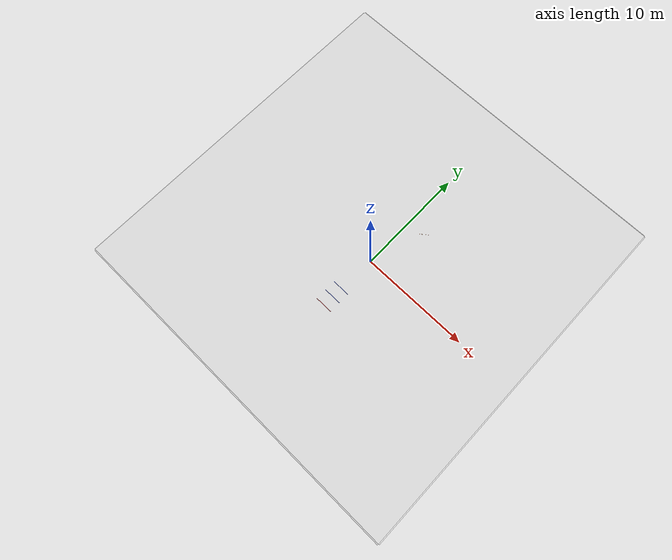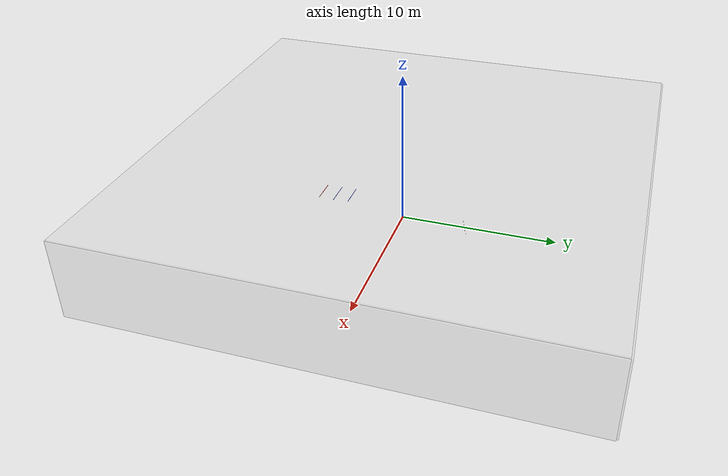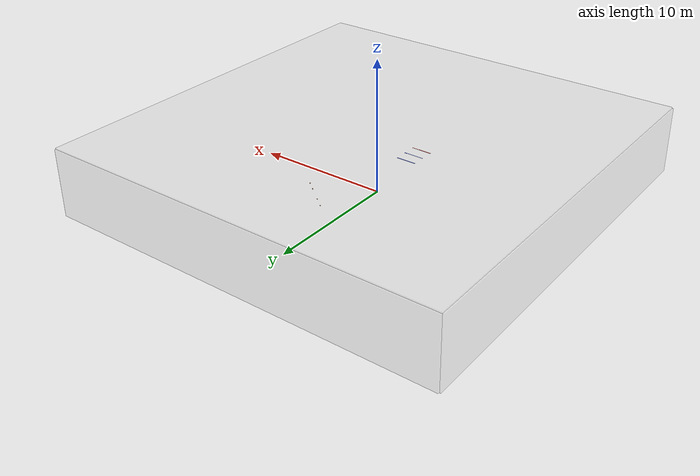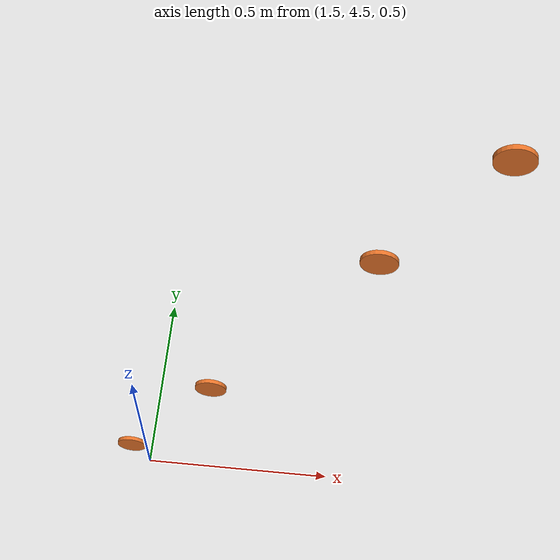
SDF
<sdf version="1.6">
 <world name="imav2026_indoor">
  <physics name="default_physics" default="0" type="ode">
   <max_step_size>0.001</max_step_size>
   <real_time_factor>1</real_time_factor>
   <real_time_update_rate>1000</real_time_update_rate>
  </physics>
  <include><uri>model://sun</uri></include>
  <include>
   <name>copper_disc_0</name>
   <uri>model://imav2026_copper_disc</uri>
   <pose>2.279557 4.539700 1.986765 1.570796 0 0</pose>
  </include>
  <include>
   <name>copper_disc_1</name>
   <uri>model://imav2026_copper_disc</uri>
   <pose>2.068919 4.539700 1.610023 1.570796 0 0</pose>
  </include>
  <include>
   <name>copper_disc_2</name>
   <uri>model://imav2026_copper_disc</uri>
   <pose>1.690054 4.539699 0.937345 1.570796 0 0</pose>
  </include>
  <include>
   <name>copper_disc_3</name>
   <uri>model://imav2026_copper_disc</uri>
   <pose>1.442930 4.539699 0.517247 1.570796 0 0</pose>
  </include>
  <include><name>red_bar_0</name><uri>model://imav2026_red_bar</uri><pose>0 -5.532255 1.0 0 0 0</pose></include>
  <include>
   <name>blue_bar_0</name>
   <uri>model://imav2026_blue_bar</uri>
   <pose>0 -4.527609 1.0 0 0 0</pose>
  </include>
  <include>
   <name>blue_bar_1</name>
   <uri>model://imav2026_blue_bar</uri>
   <pose>0 -3.546240 1.0 0 0 0</pose>
  </include>
  <include><name>thermal_sources</name><uri>model://imav2026_thermal_sources</uri></include>
  <model name="simple_room">
   <static>1</static>
   <link name="north_wall">
    <pose>0 15 2.5 0 0 0</pose>
    <visual name="v">
     <geometry><box><size>30 0.2 5</size></box></geometry>
     <transparency>0.8</transparency>
    </visual>
    <collision name="c"><geometry><box><size>30 0.2 5</size></box></geometry></collision>
   </link>
   <link name="south_wall">
    <pose>0 -15 2.5 0 0 0</pose>
    <visual name="v">
     <geometry><box><size>30 0.2 5</size></box></geometry>
     <transparency>0.8</transparency>
    </visual>
    <collision name="c"><geometry><box><size>30 0.2 5</size></box></geometry></collision>
   </link>
   <link name="east_wall">
    <pose>15 0 2.5 0 0 0</pose>
    <visual name="v">
     <geometry><box><size>0.2 30 5</size></box></geometry>
     <transparency>0.8</transparency>
    </visual>
    <collision name="c"><geometry><box><size>0.2 30 5</size></box></geometry></collision>
   </link>
   <link name="west_wall">
    <pose>-15 0 2.5 0 0 0</pose>
    <visual name="v">
     <geometry><box><size>0.2 30 5</size></box></geometry>
     <transparency>0.8</transparency>
    </visual>
    <collision name="c"><geometry><box><size>0.2 30 5</size></box></geometry></collision>
   </link>
   <link name="ceiling">
    <pose>0 0 5 0 0 0</pose>
    <visual name="v">
     <geometry><box><size>30 30 0.2</size></box></geometry>
     <transparency>0.9</transparency>
    </visual>
    <collision name="c"><geometry><box><size>30 30 0.2</size></box></geometry></collision>
   </link>
  </model>
 </world>
</sdf>

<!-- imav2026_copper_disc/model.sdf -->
<sdf version="1.6">
  <model name="imav2026_copper_disc">
    <static>true</static>

    <link name="copper_disc_link">
      <visual name="copper_disc_visual">
        <geometry>
          <cylinder>
            <radius>0.04</radius>
            <length>0.01</length>
          </cylinder>
        </geometry>
        <material>
          <ambient>0.8 0.38 0.12 1</ambient>
          <diffuse>0.9 0.45 0.16 1</diffuse>
          <specular>0.6 0.45 0.25 1</specular>
        </material>
      </visual>

      <collision name="copper_disc_collision">
        <geometry>
          <cylinder>
            <radius>0.04</radius>
            <length>0.01</length>
          </cylinder>
        </geometry>
      </collision>
      <sensor name="copper_disc_contact_sensor" type="contact">
        <always_on>true</always_on>
        <update_rate>30.0</update_rate>

        <contact>
          <collision>copper_disc_collision</collision>
        </contact>

        <plugin name="copper_disc_bumper" filename="libgazebo_ros_bumper.so">
          <alwaysOn>true</alwaysOn>
          <updateRate>30.0</updateRate>
          <frameName>world</frameName>
          <bumperTopicName>imav2026/mission4/disc_contact_raw</bumperTopicName>
        </plugin>
      </sensor>
    </link>
  </model>
</sdf>

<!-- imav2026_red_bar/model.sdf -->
<sdf version="1.6">
  <model name="imav2026_red_bar">
    <static>true</static>

    <link name="red_bar_link">
      <visual name="red_bar_visual">
        <pose>0 0 0 0 1.570796 0</pose>
        <geometry>
          <cylinder>
            <radius>0.015</radius>
            <length>1.6</length>
          </cylinder>
        </geometry>
        <material>
          <ambient>0.85 0.02 0.02 1</ambient>
          <diffuse>0.95 0.04 0.04 1</diffuse>
          <specular>0.25 0.10 0.10 1</specular>
        </material>
      </visual>

      <collision name="red_bar_collision">
        <pose>0 0 0 0 1.570796 0</pose>
        <geometry>
          <cylinder>
            <radius>0.015</radius>
            <length>1.6</length>
          </cylinder>
        </geometry>
      </collision>
    </link>
  </model>
</sdf>

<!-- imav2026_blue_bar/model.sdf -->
<sdf version="1.6">
  <model name="imav2026_blue_bar">
    <static>true</static>

    <link name="blue_bar_link">
      <visual name="blue_bar_visual">
        <pose>0 0 0 0 1.570796 0</pose>
        <geometry>
          <cylinder>
            <radius>0.015</radius>
            <length>1.6</length>
          </cylinder>
        </geometry>
        <material>
          <ambient>0.02 0.12 0.85 1</ambient>
          <diffuse>0.04 0.20 0.95 1</diffuse>
          <specular>0.10 0.15 0.30 1</specular>
        </material>
      </visual>

      <collision name="blue_bar_collision">
        <pose>0 0 0 0 1.570796 0</pose>
        <geometry>
          <cylinder>
            <radius>0.015</radius>
            <length>1.6</length>
          </cylinder>
        </geometry>
      </collision>
    </link>
  </model>
</sdf>

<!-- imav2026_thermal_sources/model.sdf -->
<sdf version="1.6">
  <model name="imav2026_thermal_sources">
    <static>true</static>

    <link name="thermal_source_box_1">
      <pose>0.70285 1.2095 0.06 0 0 0</pose>
      <gravity>false</gravity>
      <self_collide>false</self_collide>
      <temperature_celsius>22</temperature_celsius>
      <source_size>0.24 0.24 0.01</source_size>
    </link>

    <link name="thermal_source_box_2">
      <pose>-0.21172 1.4994 0.06 0 0 0</pose>
      <gravity>false</gravity>
      <self_collide>false</self_collide>
      <temperature_celsius>85</temperature_celsius>
      <source_size>0.24 0.24 0.01</source_size>
    </link>

    <link name="thermal_source_box_3">
      <pose>0.37253 2.0252 0.06 0 0 0</pose>
      <gravity>false</gravity>
      <self_collide>false</self_collide>
      <temperature_celsius>22</temperature_celsius>
      <source_size>0.24 0.24 0.01</source_size>
    </link>
  </model>
</sdf>
